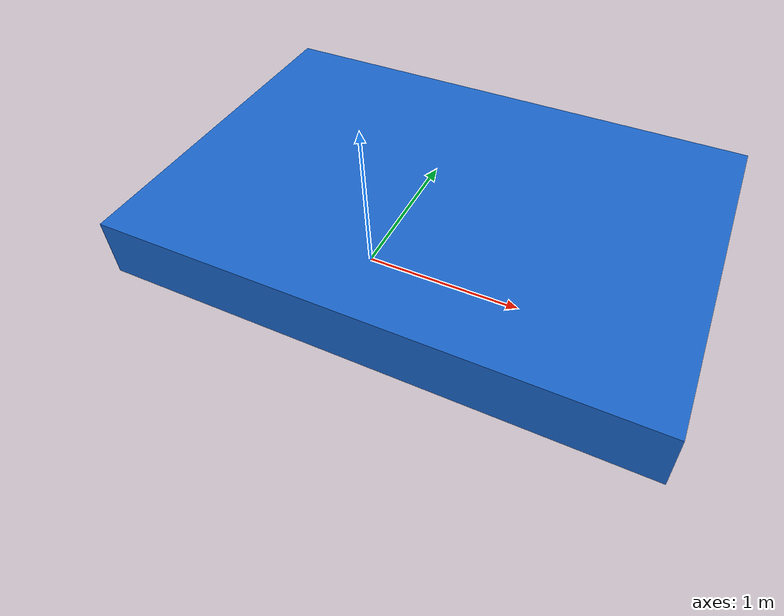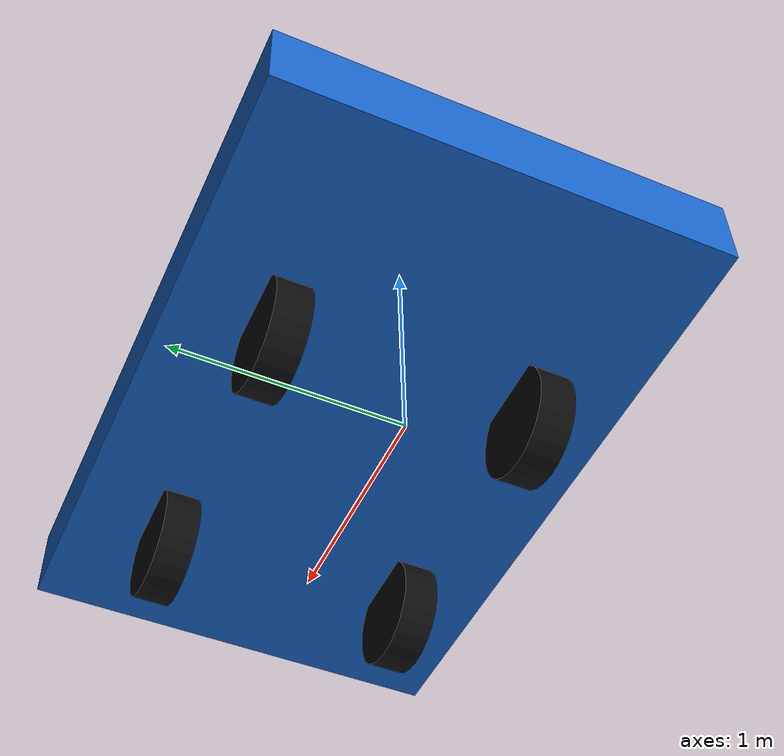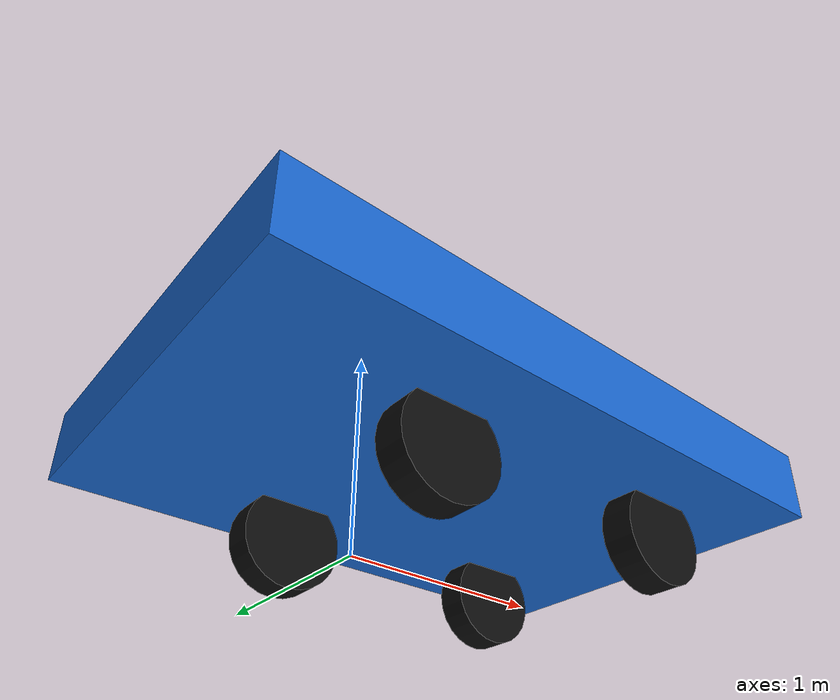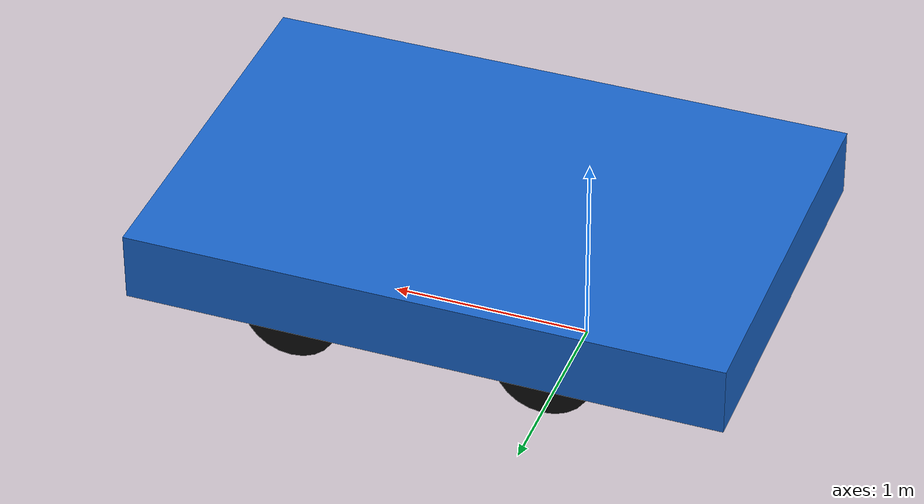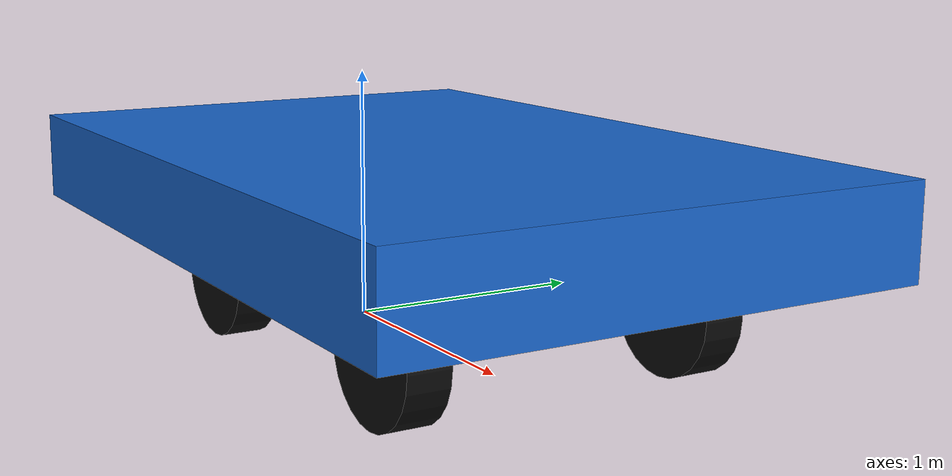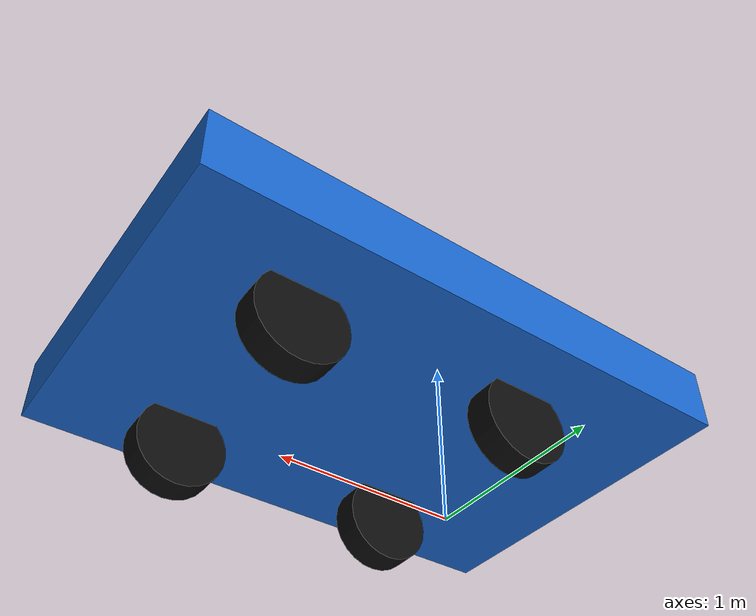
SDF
<?xml version="1.0"?>
<sdf version="1.10">

  <model name="ugv">

    <!-- REFERENCE CONVENTION                                  -->
    <!-- Model x=y=0 is the REAR AXLE CENTER, matching the     -->
    <!-- SHA*/LCBR State(x,y,yaw) reference. Front axle x=1.3. -->
    <!-- Planner footprint spans x=[-1,+2], y=[-1,+1].         -->

    <!-- CHASSIS -->
    <link name="base_link">
      <pose>0 0 0.35 0 0 0</pose>

      <inertial>
        <mass>20.0</mass>
        <inertia>
          <ixx>1.8</ixx>
          <iyy>3.0</iyy>
          <izz>3.5</izz>
        </inertia>
      </inertial>

      <collision name="collision">
        <!-- Planner footprint: rear axle reference, LB=1 m, LF=2 m. -->
        <pose>0.5 0 0 0 0 0</pose>
        <geometry>
          <box>
            <size>3.0 2.0 0.35</size>
          </box>
        </geometry>
      </collision>

      <visual name="visual">
        <!-- Visual body raised by 0.25 m so the wheels remain visible.
             Collision, inertia and Ackermann geometry are unchanged. -->
        <pose>0.5 0 0.25 0 0 0</pose>
        <geometry>
          <box>
            <size>3.0 2.0 0.35</size>
          </box>
        </geometry>
        <material>
          <ambient>0.1 0.4 0.8 1</ambient>
          <diffuse>0.1 0.4 0.8 1</diffuse>
        </material>
      </visual>
    </link>

    <!-- FRONT STEERING LINKS -->

    <link name="front_left_steering_link">
      <pose>1.30 0.58 0.25 0 0 0</pose>
      <inertial>
        <mass>0.1</mass>
        <inertia>
          <ixx>0.001</ixx>
          <iyy>0.001</iyy>
          <izz>0.001</izz>
        </inertia>
      </inertial>
    </link>

    <link name="front_right_steering_link">
      <pose>1.30 -0.58 0.25 0 0 0</pose>
      <inertial>
        <mass>0.1</mass>
        <inertia>
          <ixx>0.001</ixx>
          <iyy>0.001</iyy>
          <izz>0.001</izz>
        </inertia>
      </inertial>
    </link>

    <!-- FRONT LEFT WHEEL -->
    <!-- Link frame stays aligned with vehicle. -->
    <!-- Cylinder geometry is rotated so axle is along Y. -->

    <link name="front_left_wheel">
      <pose>1.30 0.58 0.25 0 0 0</pose>

      <inertial>
        <mass>1.0</mass>
        <inertia>
          <ixx>0.03</ixx>
          <iyy>0.02</iyy>
          <izz>0.03</izz>
        </inertia>
      </inertial>

      <collision name="collision">
        <pose>0 0 0 1.5708 0 0</pose>

        <surface>
          <friction>
            <ode>
              <mu>1.0</mu>
              <mu2>1.0</mu2>
            </ode>
          </friction>
        </surface>

        <geometry>
          <cylinder>
            <radius>0.25</radius>
            <length>0.16</length>
          </cylinder>
        </geometry>
      </collision>

      <visual name="visual">
        <pose>0 0 0 1.5708 0 0</pose>

        <geometry>
          <cylinder>
            <radius>0.25</radius>
            <length>0.16</length>
          </cylinder>
        </geometry>

        <material>
          <ambient>0.05 0.05 0.05 1</ambient>
          <diffuse>0.05 0.05 0.05 1</diffuse>
        </material>
      </visual>
    </link>

    <!-- FRONT RIGHT WHEEL -->

    <link name="front_right_wheel">
      <pose>1.30 -0.58 0.25 0 0 0</pose>

      <inertial>
        <mass>1.0</mass>
        <inertia>
          <ixx>0.03</ixx>
          <iyy>0.02</iyy>
          <izz>0.03</izz>
        </inertia>
      </inertial>

      <collision name="collision">
        <pose>0 0 0 1.5708 0 0</pose>

        <surface>
          <friction>
            <ode>
              <mu>1.0</mu>
              <mu2>1.0</mu2>
            </ode>
          </friction>
        </surface>

        <geometry>
          <cylinder>
            <radius>0.25</radius>
            <length>0.16</length>
          </cylinder>
        </geometry>
      </collision>

      <visual name="visual">
        <pose>0 0 0 1.5708 0 0</pose>

        <geometry>
          <cylinder>
            <radius>0.25</radius>
            <length>0.16</length>
          </cylinder>
        </geometry>

        <material>
          <ambient>0.05 0.05 0.05 1</ambient>
          <diffuse>0.05 0.05 0.05 1</diffuse>
        </material>
      </visual>
    </link>

    <!-- REAR LEFT WHEEL -->

    <link name="rear_left_wheel">
      <pose>0.0 0.58 0.25 0 0 0</pose>

      <inertial>
        <mass>1.0</mass>
        <inertia>
          <ixx>0.03</ixx>
          <iyy>0.02</iyy>
          <izz>0.03</izz>
        </inertia>
      </inertial>

      <collision name="collision">
        <pose>0 0 0 1.5708 0 0</pose>

        <surface>
          <friction>
            <ode>
              <mu>1.0</mu>
              <mu2>1.0</mu2>
            </ode>
          </friction>
        </surface>

        <geometry>
          <cylinder>
            <radius>0.25</radius>
            <length>0.16</length>
          </cylinder>
        </geometry>
      </collision>

      <visual name="visual">
        <pose>0 0 0 1.5708 0 0</pose>

        <geometry>
          <cylinder>
            <radius>0.25</radius>
            <length>0.16</length>
          </cylinder>
        </geometry>

        <material>
          <ambient>0.05 0.05 0.05 1</ambient>
          <diffuse>0.05 0.05 0.05 1</diffuse>
        </material>
      </visual>
    </link>

    <!-- REAR RIGHT WHEEL -->

    <link name="rear_right_wheel">
      <pose>0.0 -0.58 0.25 0 0 0</pose>

      <inertial>
        <mass>1.0</mass>
        <inertia>
          <ixx>0.03</ixx>
          <iyy>0.02</iyy>
          <izz>0.03</izz>
        </inertia>
      </inertial>

      <collision name="collision">
        <pose>0 0 0 1.5708 0 0</pose>

        <surface>
          <friction>
            <ode>
              <mu>1.0</mu>
              <mu2>1.0</mu2>
            </ode>
          </friction>
        </surface>

        <geometry>
          <cylinder>
            <radius>0.25</radius>
            <length>0.16</length>
          </cylinder>
        </geometry>
      </collision>

      <visual name="visual">
        <pose>0 0 0 1.5708 0 0</pose>

        <geometry>
          <cylinder>
            <radius>0.25</radius>
            <length>0.16</length>
          </cylinder>
        </geometry>

        <material>
          <ambient>0.05 0.05 0.05 1</ambient>
          <diffuse>0.05 0.05 0.05 1</diffuse>
        </material>
      </visual>
    </link>

    <!-- STEERING JOINTS : rotation around Z -->

    <joint name="front_left_steering_joint" type="revolute">
      <parent>base_link</parent>
      <child>front_left_steering_link</child>

      <axis>
        <xyz>0 0 1</xyz>
        <limit>
          <lower>-0.60</lower>
          <upper>0.60</upper>
          <effort>100</effort>
          <velocity>2.0</velocity>
        </limit>
      </axis>
    </joint>

    <joint name="front_right_steering_joint" type="revolute">
      <parent>base_link</parent>
      <child>front_right_steering_link</child>

      <axis>
        <xyz>0 0 1</xyz>
        <limit>
          <lower>-0.60</lower>
          <upper>0.60</upper>
          <effort>100</effort>
          <velocity>2.0</velocity>
        </limit>
      </axis>
    </joint>

    <!-- FRONT WHEEL ROLLING JOINTS : rotation around Y -->

    <joint name="front_left_wheel_joint" type="revolute">
      <parent>front_left_steering_link</parent>
      <child>front_left_wheel</child>
      <axis>
        <xyz>0 1 0</xyz>
      </axis>
    </joint>

    <joint name="front_right_wheel_joint" type="revolute">
      <parent>front_right_steering_link</parent>
      <child>front_right_wheel</child>
      <axis>
        <xyz>0 1 0</xyz>
      </axis>
    </joint>

    <!-- REAR DRIVEN WHEELS : rotation around Y -->

    <joint name="rear_left_wheel_joint" type="revolute">
      <parent>base_link</parent>
      <child>rear_left_wheel</child>
      <axis>
        <xyz>0 1 0</xyz>
      </axis>
    </joint>

    <joint name="rear_right_wheel_joint" type="revolute">
      <parent>base_link</parent>
      <child>rear_right_wheel</child>
      <axis>
        <xyz>0 1 0</xyz>
      </axis>
    </joint>

    <!-- ACKERMANN STEERING SYSTEM -->

    <plugin
      filename="gz-sim-ackermann-steering-system"
      name="gz::sim::systems::AckermannSteering">

      <left_steering_joint>
        front_left_steering_joint
      </left_steering_joint>

      <right_steering_joint>
        front_right_steering_joint
      </right_steering_joint>

      <left_joint>
        rear_left_wheel_joint
      </left_joint>

      <right_joint>
        rear_right_wheel_joint
      </right_joint>

      <wheel_base>1.30</wheel_base>
      <wheel_separation>1.16</wheel_separation>
      <wheel_radius>0.25</wheel_radius>

      <min_velocity>-2.0</min_velocity>
      <max_velocity>2.0</max_velocity>

      <min_acceleration>-1.0</min_acceleration>
      <max_acceleration>1.0</max_acceleration>

      <steering_limit>0.448</steering_limit>
      <steer_p_gain>8.0</steer_p_gain>

      <topic>/ugv_1/cmd_vel</topic>

    </plugin>

  </model>

</sdf>
